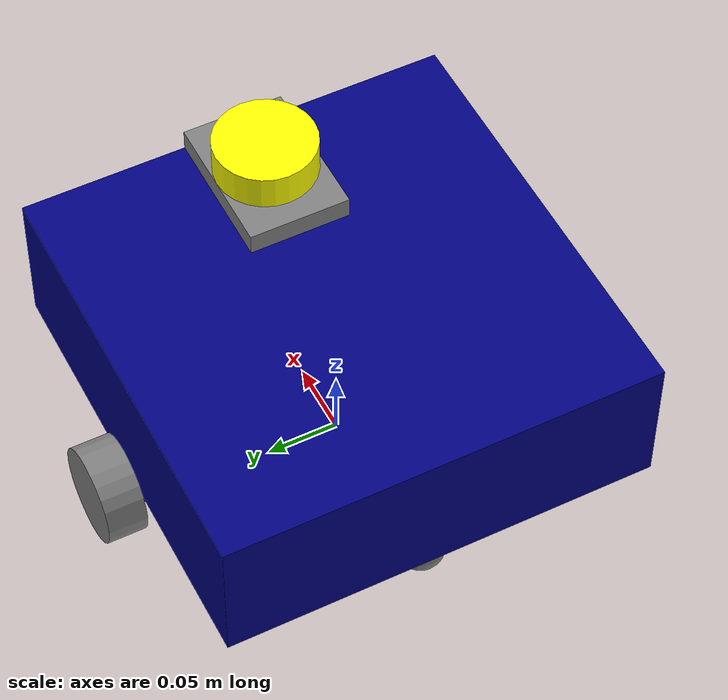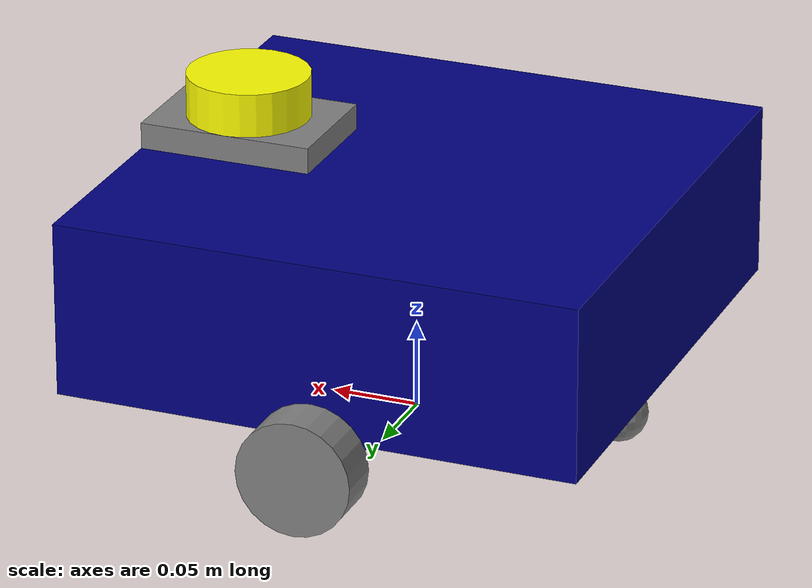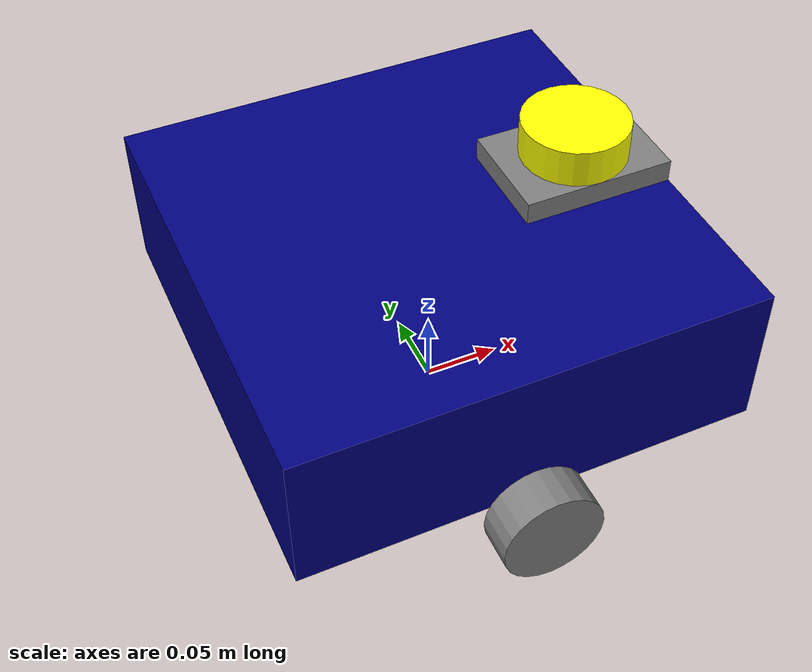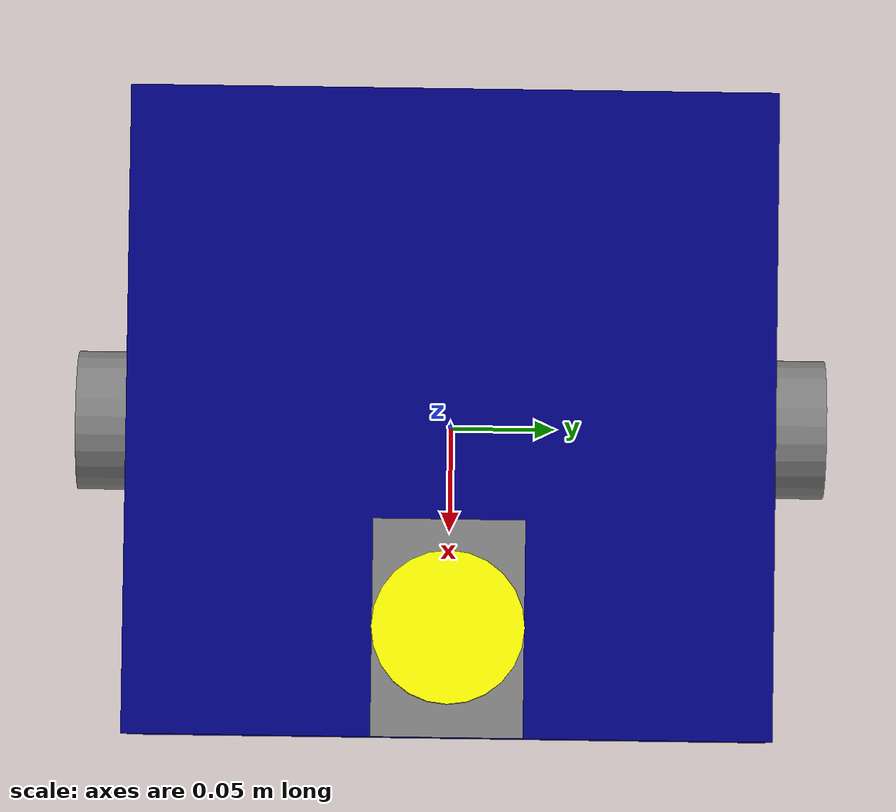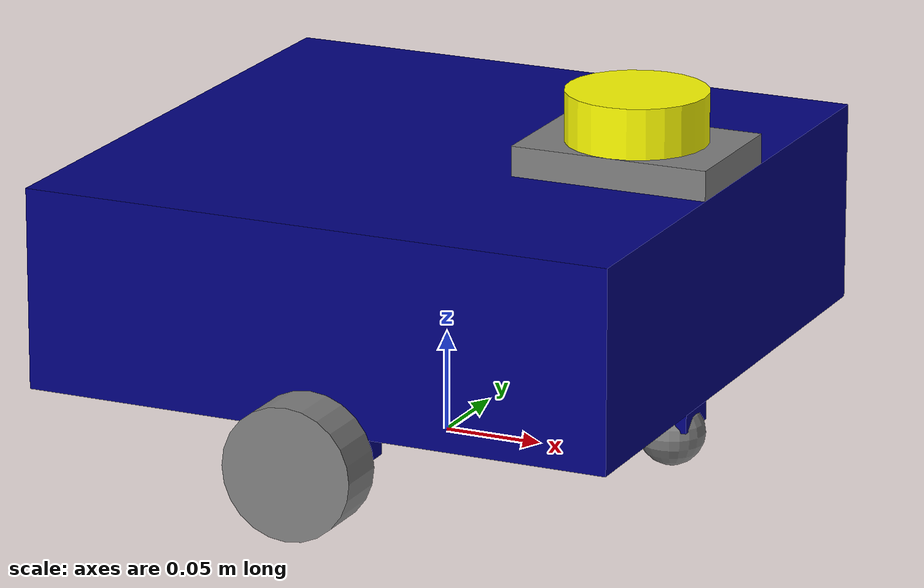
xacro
<?xml version="1.0"?>
<robot name="mybot" xmlns:xacro="http://www.ros.org/wiki/xacro">

  <!-- Start GZ or Ignition depending on ROS 2 Version -->
  <xacro:arg name="is_ignition" default="true"/>

  <!-- Load Simulated or Real Hardware Interfaces -->
  <xacro:arg name="is_sim" default="true"/>

  <!-- Include Gazebo Parameters -->
  <xacro:include filename="$(find mybot_description)/urdf/mybot_gazebo.xacro" />

  <!-- Include ros2_control Plugins -->
  <xacro:include filename="$(find mybot_description)/urdf/mybot_ros2_control.xacro" />

    <xacro:include filename="common_properties.xacro" />

    <xacro:property name="base_length" value="0.3" />
    <xacro:property name="base_width" value="0.3" />
    <xacro:property name="base_height" value="0.1" />

    <xacro:property name="engine_length" value="0.025" />
    <xacro:property name="engine_width" value="0.05" />
    <xacro:property name="engine_height" value="0.025" />

    <xacro:property name="caster_base_length" value="0.025" />
    <xacro:property name="caster_base_width" value="0.025" />
    <xacro:property name="caster_base_height" value="0.025" />

    <xacro:property name="lidar_base_length" value="0.1" />
    <xacro:property name="lidar_base_width" value="0.07" />
    <xacro:property name="lidar_base_height" value="0.03" />

    <xacro:property name="lidar_radius" value="0.035" />
    <xacro:property name="lidar_length" value="0.025" />

    <xacro:property name="wheel_radius" value="0.033" />
    <xacro:property name="wheel_length" value="0.027" />

    <link name="base_footprint" />

    <link name="base_link">
        <visual>
            <geometry>
                <box size="${base_length} ${base_width} ${base_height}" />
            </geometry>
            <origin xyz="0 0 ${base_height / 2.0}" rpy="0 0 0" />
            <material name="blue" />
        </visual>
        <collision>
            <geometry>
                <box size="${base_length} ${base_width} ${base_height}" />
            </geometry>
            <origin xyz="0 0 ${base_height / 2.0}" rpy="0 0 0" />
        </collision>
        <xacro:box_inertia m="5.0" l="${2*base_length}" w="${2*base_width}" h="${2*base_height}"
                           xyz="0 0 ${base_height / 2.0}" rpy="0 0 0" />
    </link>

    <link name="caster_base_front_link">
        <visual>
            <geometry>
                <box size="${caster_base_length} ${caster_base_width} ${caster_base_height}" />
            </geometry>
            <origin xyz="0 0 0" rpy="0 0 0" />
            <material name="blue" />
        </visual>
        <collision>
            <geometry>
                <box size="${caster_base_length} ${caster_base_width} ${caster_base_height}" />
            </geometry>
            <origin xyz="0 0 0" rpy="0 0 0" />
        </collision>
        <xacro:box_inertia m="5.0" l="${2*caster_base_length}" w="${2*caster_base_width}" h="${2*caster_base_height}"
                           xyz="0 0 ${caster_base_height / 2.0}" rpy="0 0 0" />
    </link>

    <link name="caster_base_back_link">
        <visual>
            <geometry>
                <box size="${caster_base_length} ${caster_base_width} ${caster_base_height}" />
            </geometry>
            <origin xyz="0 0 0" rpy="0 0 0" />
            <material name="blue" />
        </visual>
        <collision>
            <geometry>
                <box size="${caster_base_length} ${caster_base_width} ${caster_base_height}" />
            </geometry>
            <origin xyz="0 0 0" rpy="0 0 0" />
        </collision>
        <xacro:box_inertia m="5.0" l="${2*caster_base_length}" w="${2*caster_base_width}" h="${2*caster_base_height}"
                           xyz="0 0 ${caster_base_height / 2.0}" rpy="0 0 0" />
    </link>

    <link name="left_engine_link">
        <visual>
            <geometry>
                <box size="${engine_length} ${engine_width} ${engine_height}" />
            </geometry>
            <origin xyz="0 0 0" rpy="0 0 0" />
            <material name="blue" />
        </visual>
        <collision>
            <geometry>
                <box size="${engine_length} ${engine_width} ${engine_height}" />
            </geometry>
            <origin xyz="0 0 0" rpy="0 0 0" />
        </collision>
        <xacro:box_inertia m="5.0" l="${2*engine_length}" w="${2*engine_width}" h="${2*engine_height}"
                           xyz="0 0 ${engine_height / 2.0}" rpy="0 0 0" />
    </link>

    <link name="right_engine_link">
        <visual>
            <geometry>
                <box size="${engine_length} ${engine_width} ${engine_height}" />
            </geometry>
            <origin xyz="0 0 0" rpy="0 0 0" />
            <material name="blue" />
        </visual>
        <collision>
            <geometry>
                <box size="${engine_length} ${engine_width} ${engine_height}" />
            </geometry>
            <origin xyz="0 0 0" rpy="0 0 0" />
        </collision>
        <xacro:box_inertia m="5.0" l="${2*engine_length}" w="${2*engine_width}" h="${2*engine_height}"
                           xyz="0 0 ${engine_height / 2.0}" rpy="0 0 0" />
    </link>

    <xacro:macro name="wheel_link" params="prefix">
        <link name="${prefix}_wheel_link">
            <visual>
                <geometry>
                    <cylinder radius="${wheel_radius}" length="${wheel_length}" />
                </geometry>
                <origin xyz="0 0 0" rpy="${pi / 2.0} 0 0" />
                <material name="grey" />
            </visual>
            <collision>
                <geometry>
                    <cylinder radius="${wheel_radius}" length="${wheel_length}" />
                </geometry>
                <origin xyz="0 0 0" rpy="${pi / 2.0} 0 0" />
            </collision>
            <xacro:cylinder_inertia m="1.0" r="${2*wheel_radius}" h="${2*wheel_length}"
                                    xyz="0 0 0" rpy="${pi / 2.0} 0 0" />
        </link>
    </xacro:macro>

    <xacro:wheel_link prefix="right" />
    <xacro:wheel_link prefix="left" />

    <link name="caster_wheel_front_link">
        <visual>
            <geometry>
                <sphere radius="${wheel_radius / 2.0}" />
            </geometry>
            <origin xyz="0 0 0" rpy="0 0 0" />
            <material name="grey" />
        </visual>
        <collision>
            <geometry>
                <sphere radius="${wheel_radius / 2.0}" />
            </geometry>
            <origin xyz="0 0 0" rpy="0 0 0" />
        </collision>
        <xacro:sphere_inertia m="0.5" r="${2*wheel_radius / 2.0}"
                              xyz="0 0 0" rpy="0 0 0" />
    </link>

    <link name="caster_wheel_back_link">
        <visual>
            <geometry>
                <sphere radius="${wheel_radius / 2.0}" />
            </geometry>
            <origin xyz="0 0 0" rpy="0 0 0" />
            <material name="grey" />
        </visual>
        <collision>
            <geometry>
                <sphere radius="${wheel_radius / 2.0}" />
            </geometry>
            <origin xyz="0 0 0" rpy="0 0 0" />
        </collision>
        <xacro:sphere_inertia m="0.5" r="${2*wheel_radius / 2.0}"
                              xyz="0 0 0" rpy="0 0 0" />
    </link>

    <link name="lidar_base_link">
        <visual>
            <geometry>
                <box size="${lidar_base_length} ${lidar_base_width} ${lidar_base_height}" />
            </geometry>
            <origin xyz="0 0 0" rpy="0 0 0" />
            <material name="grey" />
        </visual>
        <collision>
            <geometry>
                <box size="${lidar_base_length} ${lidar_base_width} ${lidar_base_height}" />
            </geometry>
            <origin xyz="0 0 0" rpy="0 0 0" />
        </collision>
        <xacro:box_inertia m="5.0" l="${2*lidar_base_length}" w="${2*lidar_base_width}" h="${2*lidar_base_height}"
                           xyz="0 0 ${lidar_base_height / 2.0}" rpy="0 0 0" />
    </link>

    <link name="lidar_link">
        <visual>
            <geometry>
                <cylinder radius="${lidar_radius}" length="${lidar_length}" />
            </geometry>
            <origin xyz="0 0 ${lidar_length / 2.0}" rpy="0 0 0" />
            <material name="yellow" />
        </visual>
        <collision>
            <geometry>
                <cylinder radius="${lidar_radius}" length="${lidar_length}" />
            </geometry>
            <origin xyz="0 0 ${lidar_length / 2.0}" rpy="0 0 0" />
        </collision>
        <xacro:cylinder_inertia m="0.3" r="${2*lidar_radius}" h="${2*lidar_length}"
                                xyz="0 0 ${lidar_length / 2.0}" rpy="0 0 0" />
    </link>

    <joint name="base_joint" type="fixed">
        <parent link="base_footprint" />
        <child link="base_link" />
        <origin xyz="0 0 ${wheel_radius + (engine_height / 2.0)}" rpy="0 0 0"/>
    </joint>

    <joint name="base_right_engine_joint" type="fixed">
        <parent link="base_link" />
        <child link="right_engine_link" />
        <origin xyz="0 ${-(base_width - engine_width) / 2.0} ${-(engine_height) / 2.0}" rpy="0 0 0"/>
    </joint>

    <joint name="base_left_engine_joint" type="fixed">
        <parent link="base_link" />
        <child link="left_engine_link" />
        <origin xyz="0 ${(base_width - engine_width) / 2.0} ${-(engine_height) / 2.0}" rpy="0 0 0"/>
    </joint>

    <joint name="base_caster_base_front_joint" type="fixed">
        <parent link="base_link" />
        <child link="caster_base_front_link" />
        <origin xyz="${base_length / 2.5} 0 ${-(caster_base_height) / 2.0}" rpy="0 0 0"/>
    </joint>

    <joint name="base_caster_base_back_joint" type="fixed">
        <parent link="base_link" />
        <child link="caster_base_back_link" />
        <origin xyz="${-base_length / 2.5} 0 ${-(caster_base_height) / 2.0}" rpy="0 0 0"/>
    </joint>

    <joint name="right_engine_right_wheel_joint" type="continuous">
        <parent link="right_engine_link" />
        <child link="right_wheel_link" />
        <origin xyz="0 ${-(wheel_length + (engine_height / 2.0))} 0" rpy="0 0 0" />
        <axis xyz="0 1 0" />
    </joint>

    <joint name="left_engine_left_wheel_joint" type="continuous">
        <parent link="left_engine_link" />
        <child link="left_wheel_link" />
        <origin xyz="0 ${(wheel_length + (engine_height / 2.0))} 0" rpy="0 0 0" />
        <axis xyz="0 1 0" />
    </joint>

    <joint name="caster_base_caster_wheel_front_joint" type="fixed">
        <parent link="caster_base_front_link" />
        <child link="caster_wheel_front_link" />
        <origin xyz="0 0 ${-wheel_radius / 2.0}" rpy="0 0 0" />
    </joint>

    <joint name="caster_base_caster_wheel_back_joint" type="fixed">
        <parent link="caster_base_back_link" />
        <child link="caster_wheel_back_link" />
        <origin xyz="0 0 ${-wheel_radius / 2.0}" rpy="0 0 0" />
    </joint>

    <joint name="base_lidar_base_joint" type="fixed">
        <parent link="base_link" />
        <child link="lidar_base_link" />
        <origin xyz="${base_length / 2.0 - lidar_base_length / 2.0} 0 ${base_height}" rpy="0 0 0" />
    </joint>

    <joint name="lidar_base_lidar_joint" type="fixed">
        <parent link="lidar_base_link" />
        <child link="lidar_link" />
        <origin xyz="0 0 ${lidar_base_height / 2.0}" rpy="0 0 0" />
    </joint>

</robot>

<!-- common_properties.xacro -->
<robot xmlns:xacro="http://www.ros.org/wiki/xacro">

    <material name="blue">
        <color rgba="0 0 0.5 1" />
    </material>

    <material name="grey">
        <color rgba="0.5 0.5 0.5 1" />
    </material>

    <material name="orange">
        <color rgba="1.0 0.5 0 1" />
    </material>

    <material name="yellow">
        <color rgba="1.0 1.0 0 1" />
    </material>

    <xacro:macro name="box_inertia" params="m l w h xyz rpy">
        <inertial>
            <origin xyz="${xyz}" rpy="${rpy}" />
            <mass value="${m}" />
            <inertia ixx="${(m/12) * (h*h + l*l)}" ixy="0" ixz="0"
                     iyy="${(m/12) * (w*w + l*l)}" iyz="0"
                     izz="${(m/12) * (w*w + h*h)}" />
        </inertial>
    </xacro:macro>

    <xacro:macro name="cylinder_inertia" params="m r h xyz rpy">
        <inertial>
            <origin xyz="${xyz}" rpy="${rpy}" />
            <mass value="${m}" />
            <inertia ixx="${(m/12) * (3*r*r + h*h)}" ixy="0" ixz="0"
                     iyy="${(m/12) * (3*r*r + h*h)}" iyz="0"
                     izz="${(m/2) * (r*r)}" />
        </inertial>
    </xacro:macro>

    <xacro:macro name="sphere_inertia" params="m r xyz rpy">
        <inertial>
            <origin xyz="${xyz}" rpy="${rpy}" />
            <mass value="${m}" />
            <inertia ixx="${(2/5) * m * r * r}" ixy="0" ixz="0"
                     iyy="${(2/5) * m * r * r}" iyz="0"
                     izz="${(2/5) * m * r * r}" />
        </inertial>
    </xacro:macro>

</robot>
